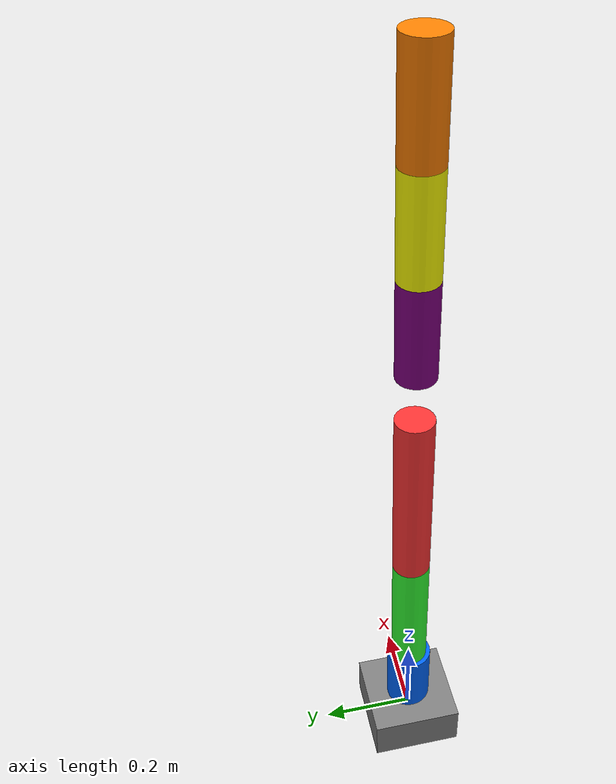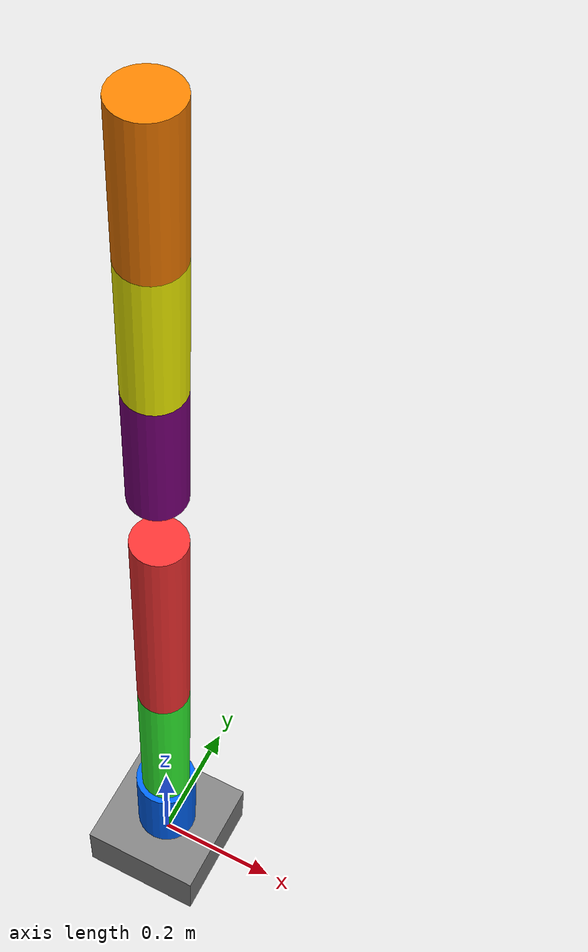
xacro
<?xml version="1.0"?>
<robot xmlns:xacro="http://ros.org/wiki/xacro" name="ur5e">

  <!-- Include the macro and ROS 2 control definitions -->
  <xacro:include filename="$(find mujoco_accessories)/urdf/ur5e_macro.xacro"/>
  <xacro:include filename="$(find mujoco_accessories)/urdf/ur5e_ros2_control.xacro"/>

  <!-- Apply the macros directly with no prefix -->
  <xacro:ur5e_macro />
  <xacro:ur5e_ros2_control />

</robot>

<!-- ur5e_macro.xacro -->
<robot xmlns:xacro="http://ros.org/wiki/xacro" name="ur5e_macro">
  <xacro:macro name="ur5e_macro" params=""></xacro:macro>
  <xacro:property name="arm_length" value="1.0" />

  <!-- Base Link -->
  <link name="base_link">
    <visual>
      <geometry>
        <box size="0.2 0.2 0.1" />
      </geometry>
      <material name="gray">
        <color rgba="0.5 0.5 0.5 1" />
      </material>
    </visual>
  </link>

  <!-- Shoulder Pan -->
  <joint name="shoulder_pan_joint" type="revolute">
    <parent link="base_link" />
    <child link="shoulder_link" />
    <origin xyz="0 0 0.1" rpy="0 0 0" />
    <axis xyz="0 0 1" />
    <limit lower="-3.14" upper="3.14" effort="100" velocity="1.5" />
  </joint>

  <link name="shoulder_link">
    <visual>
      <geometry>
        <cylinder length="0.2" radius="0.05" />
      </geometry>
      <material name="blue">
        <color rgba="0.0 0.4 1.0 1" />
      </material>
    </visual>
  </link>

  <joint name="shoulder_lift_joint" type="revolute">
    <parent link="shoulder_link" />
    <child link="upper_arm_link" />
    <origin xyz="0 0 0.2" rpy="0 0 0" />
    <axis xyz="0 1 0" />
    <limit lower="-3.14" upper="3.14" effort="100" velocity="1.5" />
  </joint>

  <link name="upper_arm_link">
    <visual>
      <geometry>
        <cylinder length="0.4" radius="0.04" />
      </geometry>
      <material name="green">
        <color rgba="0.2 1.0 0.2 1" />
      </material>
    </visual>
  </link>

  <joint name="elbow_joint" type="revolute">
    <parent link="upper_arm_link" />
    <child link="forearm_link" />
    <origin xyz="0 0 0.4" rpy="0 0 0" />
    <axis xyz="0 1 0" />
    <limit lower="-3.14" upper="3.14" effort="100" velocity="1.5" />
  </joint>

  <link name="forearm_link">
    <visual>
      <geometry>
        <cylinder length="0.4" radius="0.04" />
      </geometry>
      <material name="red">
        <color rgba="1.0 0.2 0.2 1" />
      </material>
    </visual>
  </link>

  <joint name="wrist_1_joint" type="revolute">
    <parent link="forearm_link" />
    <child link="wrist_1_link" />
    <origin xyz="0 0 0.4" rpy="0 0 0" />
    <axis xyz="0 1 0" />
    <limit lower="-3.14" upper="3.14" effort="100" velocity="1.5" />
  </joint>

  <link name="wrist_1_link">
    <visual>
      <geometry>
        <cylinder length="0.2" radius="0.04" />
      </geometry>
      <material name="purple">
        <color rgba="0.5 0.0 0.5 1" />
      </material>
    </visual>
  </link>

  <joint name="wrist_2_joint" type="revolute">
    <parent link="wrist_1_link" />
    <child link="wrist_2_link" />
    <origin xyz="0 0 0.2" rpy="0 0 0" />
    <axis xyz="0 1 0" />
    <limit lower="-3.14" upper="3.14" effort="100" velocity="1.5" />
  </joint>

  <link name="wrist_2_link">
    <visual>
      <geometry>
        <cylinder length="0.2" radius="0.04" />
      </geometry>
      <material name="yellow">
        <color rgba="1.0 1.0 0.0 1" />
      </material>
    </visual>
  </link>

  <joint name="wrist_3_joint" type="revolute">
    <parent link="wrist_2_link" />
    <child link="wrist_3_link" />
    <origin xyz="0 0 0.2" rpy="0 0 0" />
    <axis xyz="0 1 0" />
    <limit lower="-3.14" upper="3.14" effort="100" velocity="1.5" />
  </joint>

  <link name="wrist_3_link">
    <visual>
      <geometry>
        <cylinder length="0.2" radius="0.04" />
      </geometry>
      <material name="orange">
        <color rgba="1.0 0.5 0.0 1" />
      </material>
    </visual>
  </link>
</robot>
